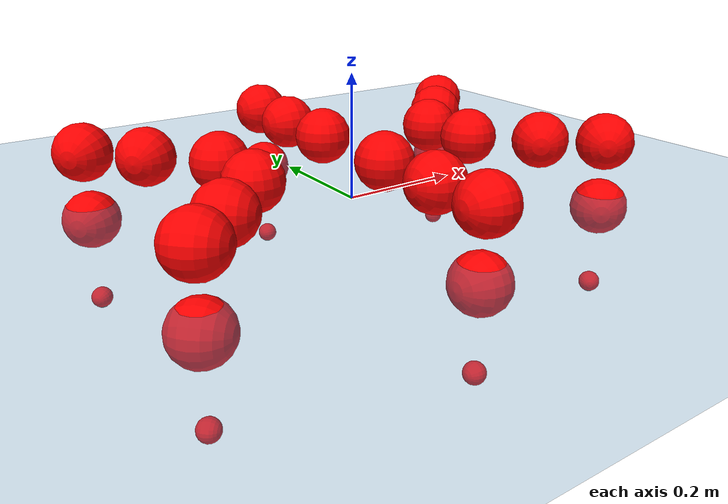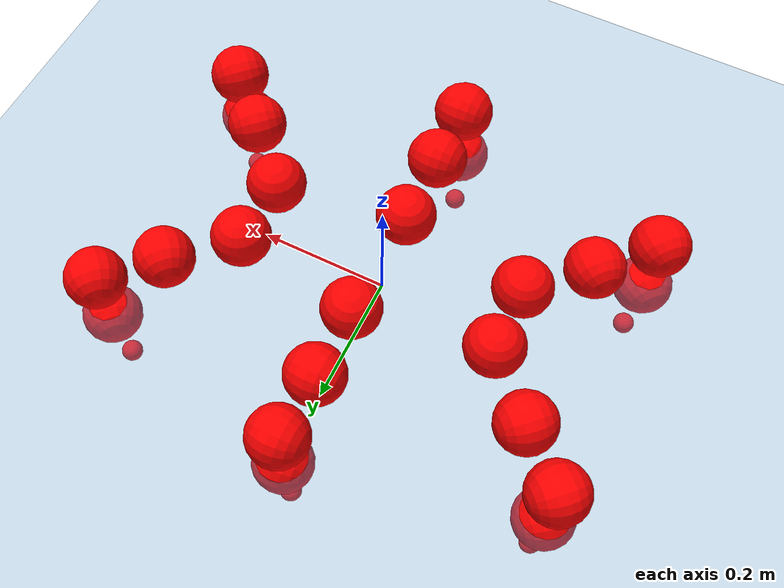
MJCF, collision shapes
<mujoco model="Golem">
  <compiler angle="radian" assetdir="assets" balanceinertia="true" inertiafromgeom="false"/>

  <option timestep="0.005" density="1.2" viscosity="2e-05"/>

  <size nkey="1"/>

  <visual>
    <quality shadowsize="8192"/>
    <map shadowclip="0.5"/>
  </visual>

  <default>
    <default class="/">
      <joint armature="0.01" damping="0.01" frictionloss="0.01"/>
      <geom contype="0" conaffinity="0" group="1" solref="-1000 -80"/>
      <site size="0.01 0.005 0.005" group="5"/>
      <general forcelimited="true" biastype="affine" gainprm="25" biasprm="0 -25 -0.5"/>
      <default class="visual">
        <geom type="mesh" group="2"/>
      </default>
      <default class="collision">
        <geom group="3"/>
      </default>
      <default class="foot">
        <geom size="0.01 0 0" condim="6" group="4" priority="1" solimp="0.015 1 0.01"/>
      </default>
      <default class="reward_collision_sphere">
        <geom group="5" rgba="1 0 0 1"/>
      </default>
    </default>
  </default>

  <asset>
    <texture type="skybox" colorspace="auto" name="//unnamed_texture_0" builtin="gradient" rgb1="0.95 0.95 0.95" rgb2="0.95 0.95 0.95" width="100" height="600"/>
    <texture type="2d" colorspace="auto" name="texplane" builtin="checker" rgb1="0.345 0.575 0.748" rgb2="0.345 0.575 0.748" markrgb="1 1 1" width="512" height="512"/>
    <material name="MatPlane" class="/" texture="texplane" texuniform="true" texrepeat="2 2" specular="0.9"/>
    <mesh name="body" class="/" file="body.stl" scale="0.001 0.001 0.001"/>
    <mesh name="coxa" class="/" file="coxa.stl" scale="0.001 0.001 0.001"/>
    <mesh name="femur" class="/" file="femur.stl" scale="0.001 0.001 0.001"/>
    <mesh name="tibia" class="/" file="tibia.stl" scale="0.001 0.001 0.001"/>
    <mesh name="tarsus" class="/" file="tarsus.stl" scale="0.001 0.001 0.001"/>
  </asset>

  <worldbody>
    <geom name="floor" class="/" size="100 100 0.125" type="plane" group="0" material="MatPlane"/>
    <light name="toplight_shadow" class="/" pos="0 0 5" dir="0.0990148 0.0990148 -0.990148" type="directional" ambient="0.04 0.04 0.04" diffuse="0.55 0.55 0.55" specular="0.12 0.12 0.12"/>
    <light name="toplight_fill" class="/" pos="0 0 5" dir="0.0990148 0.0990148 -0.990148" type="directional" castshadow="false" ambient="0.04 0.04 0.04" diffuse="0.3 0.3 0.3" specular="0.08 0.08 0.08"/>
    <body name="trunk" pos="0.00151678 0.00281848 0.00272507" quat="1 -4.82988e-05 -2.44837e-05 4.25639e-05">
      <inertial pos="0.00136024 -0.000331358 -0.00177909" quat="0.999996 0.00184696 -0.00188917 0.000832493" mass="5.57124" diaginertia="0.0327107 0.00759156 0.0246792"/>
      <joint name="//unnamed_joint_0" type="free"/>
      <geom name="//unnamed_geom_1" class="/" pos="0 0 0.0765754" quat="1 0 0 0" type="mesh" rgba="0.9 0.9 0.9 1" mesh="body"/>
      <site name="imu" class="/" pos="0.176285 0.0106821 0.125824" size="0.0114055"/>
      <camera name="track" class="/" pos="0 -1.88775 0" quat="0.707107 0.707107 0 0" mode="trackcom"/>
      <camera name="ego_camera" class="/" pos="0.166569 0 0.119649" quat="-0.5 -0.5 0.5 0.5"/>
      <body name="coxa_RR" pos="-0.228296 -0.079467 0.076784" quat="0.382651 -0.000368799 -0.000210584 -0.923893">
        <inertial pos="-0.000419815 -0.00112537 -0.00201844" quat="0.999904 -0.00883248 -0.00969105 -0.0045844" mass="0.292406" diaginertia="0.0333265 0.0072323 0.0237048"/>
        <joint name="coxa_joint_RR" class="/" pos="0 0 0" axis="0.00635282 0.00391881 -0.999972" range="-3.14326 3.14774" armature="0.0101716" damping="0" frictionloss="0.0112914"/>
        <geom name="//unnamed_geom_2" class="/" type="mesh" rgba="0.2 0.2 0.2 1" mesh="coxa"/>
        <geom name="//unnamed_geom_3" class="reward_collision_sphere" size="0.0456222" pos="-0.038439 0 0"/>
        <body name="femur_RR" pos="0.0740559 -0.00171817 -0.00499908" quat="0.499916 -0.499942 0.500082 0.50006">
          <inertial pos="-0.0025976 -0.00208489 0.000235299" quat="0.999977 -0.00023228 0.00478385 -0.00475976" mass="0.298917" diaginertia="0.0347791 0.00764262 0.0248527"/>
          <joint name="femur_joint_RR" class="/" pos="0 0 0" axis="-0.00191791 -0.00501035 -0.999986" range="-3.18321 3.08278" armature="0.0109124" damping="0.00886181" frictionloss="0.0127718"/>
          <geom name="//unnamed_geom_4" class="/" type="mesh" rgba="0.9 0.9 0.9 1" mesh="femur"/>
          <geom name="//unnamed_geom_5" class="reward_collision_sphere" size="0.0456222"/>
          <body name="tibia_RR" pos="-0.00340829 -0.103703 0.00131813" quat="0.000335555 1 -0.000235349 -0.000407205">
            <inertial pos="-0.00220907 -0.000254606 0.000671681" quat="0.999998 -0.00170757 -6.79367e-05 -0.00143213" mass="0.295573" diaginertia="0.0337249 0.00713702 0.0228154"/>
            <joint name="tibia_joint_RR" class="/" pos="0 0 0" axis="-0.00391538 -0.00964863 0.999946" range="-3.09161 3.19551" armature="0.0116248" damping="0.00154669" frictionloss="0.0114381"/>
            <geom name="//unnamed_geom_6" class="/" type="mesh" rgba="0.2 0.2 0.2 1" mesh="tibia"/>
            <geom name="//unnamed_geom_7" class="reward_collision_sphere" size="0.0456222"/>
            <body name="tarsus_RR" pos="0.114671 -0.000632761 0.00174203" quat="1 -5.17495e-05 0.000104697 8.9327e-05">
              <inertial pos="0.0796002 0.000186593 0.00256866" quat="0.496914 0.500507 0.502172 0.500392" mass="0.300265" diaginertia="0.034925 0.00771968 0.02483"/>
              <joint name="tarsus_joint_RR" class="/" pos="0 0 0" axis="0.004819 -0.00271371 0.999985" range="-3.18323 3.19567" armature="0.0108345" damping="0.0356598" frictionloss="0.00994949"/>
              <geom name="//unnamed_geom_8" class="/" type="mesh" rgba="0.9 0.9 0.9 1" mesh="tarsus"/>
              <geom name="foot_1" class="foot" size="0.0113181" pos="0.143505 0 0" quat="0 -0.707107 0 0.707107"/>
              <geom name="//unnamed_geom_10" class="reward_collision_sphere" size="0.0456222"/>
              <geom name="//unnamed_geom_11" class="reward_collision_sphere" size="0.0171083" pos="0.13774 0 0"/>
              <site name="foot_1" class="foot" pos="0.143505 0 0" quat="0 -0.707107 0 0.707107" size="0.0114055"/>
            </body>
          </body>
        </body>
      </body>
      <body name="coxa_RM" pos="0.000128606 -0.124103 0.0789797" quat="0.706378 0.000684604 -0.000754552 -0.707834">
        <inertial pos="0.00284028 9.92237e-05 -0.0022939" quat="0.999926 0.00576927 0.0089634 -0.00590973" mass="0.288197" diaginertia="0.0333867 0.00737231 0.0254007"/>
        <joint name="coxa_joint_RM" class="/" pos="0 0 0" axis="0.000832279 0.00179474 -0.999998" stiffness="0.00589195" range="-3.17874 3.1367" armature="0.0112605" damping="0.00231016" frictionloss="0.0111172"/>
        <geom name="//unnamed_geom_12" class="/" type="mesh" rgba="0.2 0.2 0.2 1" mesh="coxa"/>
        <geom name="//unnamed_geom_13" class="reward_collision_sphere" size="0.0456222" pos="-0.038439 0 0"/>
        <body name="femur_RM" pos="0.075829 0.00217129 -0.00148645" quat="0.500098 -0.499941 0.500588 0.499372">
          <inertial pos="0.000493667 -0.00241027 -0.000183191" quat="0.999961 0.00267214 -0.00657097 -0.00533344" mass="0.303853" diaginertia="0.0349719 0.00736023 0.0249965"/>
          <joint name="femur_joint_RM" class="/" pos="0 0 0" axis="-0.00593642 0.0125549 -0.999904" stiffness="0.00910945" range="-3.16074 3.13516" armature="0.00999501" damping="0.0275049" frictionloss="0.0115273"/>
          <geom name="//unnamed_geom_14" class="/" type="mesh" rgba="0.9 0.9 0.9 1" mesh="femur"/>
          <geom name="//unnamed_geom_15" class="reward_collision_sphere" size="0.0456222"/>
          <body name="tibia_RM" pos="0.000986283 -0.100107 0.00112565" quat="0.000180579 1 -0.000292148 -0.00014905">
            <inertial pos="0.00284229 -0.00136667 -0.00055877" quat="0.999947 -0.00113589 -0.00239194 -0.0099515" mass="0.281845" diaginertia="0.0337107 0.00741102 0.0240691"/>
            <joint name="tibia_joint_RM" class="/" pos="0 0 0" axis="0.00104548 0.000725443 0.999999" range="-3.18073 3.14998" armature="0.0113724" damping="0.0137387" frictionloss="0.0116817"/>
            <geom name="//unnamed_geom_16" class="/" type="mesh" rgba="0.2 0.2 0.2 1" mesh="tibia"/>
            <geom name="//unnamed_geom_17" class="reward_collision_sphere" size="0.0456222"/>
            <body name="tarsus_RM" pos="0.111762 -0.00011577 0.0031167" quat="1 0.00016157 2.89721e-05 -0.000239009">
              <inertial pos="0.0779147 -0.00247402 0.00283785" quat="0.502057 0.494229 0.501657 0.502013" mass="0.303026" diaginertia="0.0337333 0.00725463 0.023818"/>
              <joint name="tarsus_joint_RM" class="/" pos="0 0 0" axis="-0.0023328 -0.00217773 0.999995" range="-3.08262 3.11742" armature="0.0126747" damping="0.0124937" frictionloss="0.0111972"/>
              <geom name="//unnamed_geom_18" class="/" type="mesh" rgba="0.9 0.9 0.9 1" mesh="tarsus"/>
              <geom name="foot_2" class="foot" size="0.0118652" pos="0.143505 0 0" quat="0 -0.707107 0 0.707107"/>
              <geom name="//unnamed_geom_20" class="reward_collision_sphere" size="0.0456222"/>
              <geom name="//unnamed_geom_21" class="reward_collision_sphere" size="0.0171083" pos="0.13774 0 0"/>
              <site name="foot_2" class="foot" pos="0.143505 0 0" quat="0 -0.707107 0 0.707107" size="0.0114055"/>
            </body>
          </body>
        </body>
      </body>
      <body name="coxa_RF" pos="0.227173 -0.0772806 0.0781997" quat="0.923857 -0.000513641 -0.00014604 -0.382738">
        <inertial pos="-0.00113355 0.00277064 -0.000692339" quat="0.999999 0.000239872 -0.00137521 -0.000769645" mass="0.294458" diaginertia="0.0346355 0.00762177 0.0236964"/>
        <joint name="coxa_joint_RF" class="/" pos="0 0 0" axis="-0.00342251 -0.00126556 -0.999993" range="-3.1532 3.15274" armature="0.0127558" damping="0.0139948" frictionloss="0.0108188"/>
        <geom name="//unnamed_geom_22" class="/" type="mesh" rgba="0.2 0.2 0.2 1" mesh="coxa"/>
        <geom name="//unnamed_geom_23" class="reward_collision_sphere" size="0.0456222" pos="-0.038439 0 0"/>
        <body name="femur_RF" pos="0.0779419 -0.00163131 0.000284377" quat="0.500089 -0.499511 0.499639 0.500761">
          <inertial pos="0.00229001 -0.00293066 -0.000961617" quat="0.999934 0.00887661 0.00707923 -0.00171673" mass="0.286261" diaginertia="0.0344988 0.00699868 0.024296"/>
          <joint name="femur_joint_RF" class="/" pos="0 0 0" axis="0.000379418 -0.000701973 -1" stiffness="0.00263244" range="-3.16666 3.16649" armature="0.00998905" damping="0.0110114" frictionloss="0.0128972"/>
          <geom name="//unnamed_geom_24" class="/" type="mesh" rgba="0.9 0.9 0.9 1" mesh="femur"/>
          <geom name="//unnamed_geom_25" class="reward_collision_sphere" size="0.0456222"/>
          <body name="tibia_RF" pos="-0.00226028 -0.101593 0.000386877" quat="0.000141333 1 0.000141634 2.93829e-05">
            <inertial pos="-0.000871776 0.000957005 -0.000232592" quat="1 0.00020444 -0.000262183 -0.000196388" mass="0.30459" diaginertia="0.0334315 0.00778409 0.024299"/>
            <joint name="tibia_joint_RF" class="/" pos="0 0 0" axis="0.000250138 -0.00583907 0.999983" range="-3.15598 3.11311" armature="0.0104246" damping="0.00478331" frictionloss="0.0112836"/>
            <geom name="//unnamed_geom_26" class="/" type="mesh" rgba="0.2 0.2 0.2 1" mesh="tibia"/>
            <geom name="//unnamed_geom_27" class="reward_collision_sphere" size="0.0456222"/>
            <body name="tarsus_RF" pos="0.109341 0.0013953 0.00282865" quat="1 -1.51396e-06 0.000717188 -0.000444857">
              <inertial pos="0.0764161 0.000251008 -9.18981e-05" quat="0.497829 0.502959 0.499425 0.499773" mass="0.29988" diaginertia="0.034397 0.0074647 0.0253245"/>
              <joint name="tarsus_joint_RF" class="/" pos="0 0 0" axis="-0.00956809 -0.0120636 0.999881" range="-3.18166 3.12439" armature="0.0129546" damping="0.0138437" frictionloss="0.0098991"/>
              <geom name="//unnamed_geom_28" class="/" type="mesh" rgba="0.9 0.9 0.9 1" mesh="tarsus"/>
              <geom name="foot_3" class="foot" size="0.0124501" pos="0.143505 0 0" quat="0 -0.707107 0 0.707107"/>
              <geom name="//unnamed_geom_30" class="reward_collision_sphere" size="0.0456222"/>
              <geom name="//unnamed_geom_31" class="reward_collision_sphere" size="0.0171083" pos="0.13774 0 0"/>
              <site name="foot_3" class="foot" pos="0.143505 0 0" quat="0 -0.707107 0 0.707107" size="0.0114055"/>
            </body>
          </body>
        </body>
      </body>
      <body name="coxa_LR" pos="-0.229206 0.0785213 0.0789215" quat="0.382955 -0.000209841 -9.14852e-05 0.923767">
        <inertial pos="-0.00167558 0.00233653 -0.000401252" quat="0.99998 -0.0019961 -0.00540828 0.00256409" mass="0.296136" diaginertia="0.0354921 0.00780826 0.0258372"/>
        <joint name="coxa_joint_LR" class="/" pos="0 0 0" axis="-0.00095871 -0.0100753 -0.999949" stiffness="0.011167" range="-3.16018 3.08529" armature="0.00979552" damping="0" frictionloss="0.00996231"/>
        <geom name="//unnamed_geom_32" class="/" type="mesh" rgba="0.2 0.2 0.2 1" mesh="coxa"/>
        <geom name="//unnamed_geom_33" class="reward_collision_sphere" size="0.0456222" pos="-0.038439 0 0"/>
        <body name="femur_LR" pos="0.0794265 -0.00223491 0.000465263" quat="0.499844 -0.499872 0.500306 0.499977">
          <inertial pos="-0.00190066 -0.00112087 0.000837721" quat="0.999905 0.00880636 -0.00204573 0.0104332" mass="0.296171" diaginertia="0.0345844 0.00769976 0.0247604"/>
          <joint name="femur_joint_LR" class="/" pos="0 0 0" axis="0.0104686 -0.00950312 0.9999" range="-3.11441 3.1599" armature="0.0114928" damping="0" frictionloss="0.0108387"/>
          <geom name="//unnamed_geom_34" class="/" type="mesh" rgba="0.9 0.9 0.9 1" mesh="femur"/>
          <geom name="//unnamed_geom_35" class="reward_collision_sphere" size="0.0456222"/>
          <body name="tibia_LR" pos="-0.00211664 -0.102117 0.00175144" quat="0.000923012 1 0.000128527 -0.000341183">
            <inertial pos="-0.000790278 -0.000806291 0.000508577" quat="0.999998 0.0015879 -0.000827912 -0.00073823" mass="0.31239" diaginertia="0.0352509 0.00762498 0.0255987"/>
            <joint name="tibia_joint_LR" class="/" pos="0 0 0" axis="0.0089062 -0.00863007 -0.999923" range="-3.19327 3.08796" armature="0.0119501" damping="0" frictionloss="0.0108084"/>
            <geom name="//unnamed_geom_36" class="/" type="mesh" rgba="0.2 0.2 0.2 1" mesh="tibia"/>
            <geom name="//unnamed_geom_37" class="reward_collision_sphere" size="0.0456222"/>
            <body name="tarsus_LR" pos="0.111239 0.000795337 0.00280458" quat="1 0.000614348 -0.000225409 -0.000561555">
              <inertial pos="0.0784364 0.000147915 -0.00105143" quat="0.498032 0.499781 0.501623 0.500557" mass="0.291535" diaginertia="0.0354101 0.0073694 0.0253044"/>
              <joint name="tarsus_joint_LR" class="/" pos="0 0 0" axis="0.00802948 0.00102108 -0.999967" range="-3.1869 3.09207" armature="0.0108576" damping="0" frictionloss="0.0124135"/>
              <geom name="//unnamed_geom_38" class="/" type="mesh" rgba="0.9 0.9 0.9 1" mesh="tarsus"/>
              <geom name="foot_4" class="foot" size="0.0126874" pos="0.143505 0 0" quat="0.707107 0 -0.707107 0"/>
              <geom name="//unnamed_geom_40" class="reward_collision_sphere" size="0.0456222"/>
              <geom name="//unnamed_geom_41" class="reward_collision_sphere" size="0.0171083" pos="0.13774 0 0"/>
              <site name="foot_4" class="foot" pos="0.143505 0 0" quat="0.707107 0 -0.707107 0" size="0.0114055"/>
            </body>
          </body>
        </body>
      </body>
      <body name="coxa_LM" pos="0.00217469 0.125536 0.0786534" quat="0.706393 -0.00113695 9.0152e-06 0.707819">
        <inertial pos="0.00128901 -0.00185099 -0.0017011" quat="0.999899 0.00915236 0.00555314 -0.00931579" mass="0.289942" diaginertia="0.0325946 0.00724927 0.0240449"/>
        <joint name="coxa_joint_LM" class="/" pos="0 0 0" axis="0.00131363 -0.00230949 -0.999996" range="-3.09165 3.11721" armature="0.0127692" damping="0.0245781" frictionloss="0.0128612"/>
        <geom name="//unnamed_geom_42" class="/" type="mesh" rgba="0.2 0.2 0.2 1" mesh="coxa"/>
        <geom name="//unnamed_geom_43" class="reward_collision_sphere" size="0.0456222" pos="-0.038439 0 0"/>
        <body name="femur_LM" pos="0.074 0.00193221 0.000815743" quat="0.500333 -0.500188 0.498914 0.500563">
          <inertial pos="0.00257584 -0.00248332 0.000894728" quat="0.99997 0.0046451 0.00512395 0.00357999" mass="0.300306" diaginertia="0.0361316 0.00753004 0.0254303"/>
          <joint name="femur_joint_LM" class="/" pos="0 0 0" axis="-0.013813 -0.00695009 0.99988" stiffness="0.0013798" range="-3.14431 3.08889" armature="0.0128784" damping="0" frictionloss="0.0116852"/>
          <geom name="//unnamed_geom_44" class="/" type="mesh" rgba="0.9 0.9 0.9 1" mesh="femur"/>
          <geom name="//unnamed_geom_45" class="reward_collision_sphere" size="0.0456222"/>
          <body name="tibia_LM" pos="-0.00334843 -0.101191 -0.00183019" quat="-0.00040781 1 0.000198979 -5.82889e-05">
            <inertial pos="0.000279824 -0.00167834 0.00146954" quat="0.9999 -0.0103104 0.00203376 0.00950103" mass="0.289319" diaginertia="0.0351844 0.00766903 0.0249764"/>
            <joint name="tibia_joint_LM" class="/" pos="0 0 0" axis="-0.00500973 0.00165673 -0.999986" range="-3.13178 3.16528" armature="0.0124318" damping="0.00994713" frictionloss="0.00985607"/>
            <geom name="//unnamed_geom_46" class="/" type="mesh" rgba="0.2 0.2 0.2 1" mesh="tibia"/>
            <geom name="//unnamed_geom_47" class="reward_collision_sphere" size="0.0456222"/>
            <body name="tarsus_LM" pos="0.111317 -0.000127936 0.00253619" quat="1 0.000187837 -0.000189426 -5.43956e-05">
              <inertial pos="0.0739907 -9.91312e-05 -0.00265218" quat="0.500006 0.49991 0.500048 0.500036" mass="0.303609" diaginertia="0.0332374 0.00737551 0.0250578"/>
              <joint name="tarsus_joint_LM" class="/" pos="0 0 0" axis="0.00492291 0.00192153 -0.999986" range="-3.1208 3.15112" armature="0.0126311" damping="0.00940912" frictionloss="0.012625"/>
              <geom name="//unnamed_geom_48" class="/" type="mesh" rgba="0.9 0.9 0.9 1" mesh="tarsus"/>
              <geom name="foot_5" class="foot" size="0.0124107" pos="0.143505 0 0" quat="0.707107 0 -0.707107 0"/>
              <geom name="//unnamed_geom_50" class="reward_collision_sphere" size="0.0456222"/>
              <geom name="//unnamed_geom_51" class="reward_collision_sphere" size="0.0171083" pos="0.13774 0 0"/>
              <site name="foot_5" class="foot" pos="0.143505 0 0" quat="0.707107 0 -0.707107 0" size="0.0114055"/>
            </body>
          </body>
        </body>
      </body>
      <body name="coxa_LF" pos="0.229087 0.0803445 0.0753174" quat="0.923698 0.000196435 0.00029705 0.383121">
        <inertial pos="0.000627898 -0.000795643 -0.00196681" quat="0.999902 -0.00702393 0.0102683 -0.00646411" mass="0.281508" diaginertia="0.0335313 0.00739898 0.0242986"/>
        <joint name="coxa_joint_LF" class="/" pos="0 0 0" axis="-0.00321637 -0.00116991 -0.999994" stiffness="0.0197721" range="-3.1886 3.1574" armature="0.0124791" damping="0.0126735" frictionloss="0.00979358"/>
        <geom name="//unnamed_geom_52" class="/" type="mesh" rgba="0.2 0.2 0.2 1" mesh="coxa"/>
        <geom name="//unnamed_geom_53" class="reward_collision_sphere" size="0.0456222" pos="-0.038439 0 0"/>
        <body name="femur_LF" pos="0.0765126 -0.00155045 0.000404481" quat="0.50016 -0.500453 0.499377 0.500008">
          <inertial pos="0.00108861 -0.000182969 -0.0009299" quat="0.99999 -0.00384368 0.00247896 -0.000283289" mass="0.293027" diaginertia="0.0339346 0.00737267 0.0233145"/>
          <joint name="femur_joint_LF" class="/" pos="0 0 0" axis="0.00110536 0.00292592 0.999995" range="-3.08292 3.13974" armature="0.0126451" damping="0.0166132" frictionloss="0.0109813"/>
          <geom name="//unnamed_geom_54" class="/" type="mesh" rgba="0.9 0.9 0.9 1" mesh="femur"/>
          <geom name="//unnamed_geom_55" class="reward_collision_sphere" size="0.0456222"/>
          <body name="tibia_LF" pos="-0.00114993 -0.100935 0.00296505" quat="6.71717e-05 1 0.000254579 -0.000402133">
            <inertial pos="-5.76451e-05 0.00278179 0.0023482" quat="0.999985 -0.00432871 -0.000907695 0.00330915" mass="0.288586" diaginertia="0.0341548 0.00742206 0.024635"/>
            <joint name="tibia_joint_LF" class="/" pos="0 0 0" axis="0.0021881 -0.00205355 -0.999995" range="-3.13679 3.11874" armature="0.00964918" damping="0" frictionloss="0.0129122"/>
            <geom name="//unnamed_geom_56" class="/" type="mesh" rgba="0.2 0.2 0.2 1" mesh="tibia"/>
            <geom name="//unnamed_geom_57" class="reward_collision_sphere" size="0.0456222"/>
            <body name="tarsus_LF" pos="0.115383 0.00187712 0.00115821" quat="1 -0.000262053 0.000676372 -0.0003351">
              <inertial pos="0.0782101 -0.00105651 -0.00254205" quat="0.491783 0.501695 0.496128 0.510205" mass="0.31103" diaginertia="0.0345467 0.00783458 0.0256684"/>
              <joint name="tarsus_joint_LF" class="/" pos="0 0 0" axis="0.00442692 0.0122655 -0.999915" stiffness="0.0355055" range="-3.19167 3.18874" armature="0.0113418" damping="0.0197023" frictionloss="0.0120015"/>
              <geom name="//unnamed_geom_58" class="/" type="mesh" rgba="0.9 0.9 0.9 1" mesh="tarsus"/>
              <geom name="foot_6" class="foot" size="0.010957" pos="0.143505 0 0" quat="0.707107 0 -0.707107 0"/>
              <geom name="//unnamed_geom_60" class="reward_collision_sphere" size="0.0456222"/>
              <geom name="//unnamed_geom_61" class="reward_collision_sphere" size="0.0171083" pos="0.13774 0 0"/>
              <site name="foot_6" class="foot" pos="0.143505 0 0" quat="0.707107 0 -0.707107 0" size="0.0114055"/>
            </body>
          </body>
        </body>
      </body>
    </body>
  </worldbody>

  <contact>
    <pair class="/" geom1="floor" geom2="foot_1" name="//unnamed_contact_0"/>
    <pair class="/" geom1="floor" geom2="foot_2" name="//unnamed_contact_1"/>
    <pair class="/" geom1="floor" geom2="foot_3" name="//unnamed_contact_2"/>
    <pair class="/" geom1="floor" geom2="foot_4" name="//unnamed_contact_3"/>
    <pair class="/" geom1="floor" geom2="foot_5" name="//unnamed_contact_4"/>
    <pair class="/" geom1="floor" geom2="foot_6" name="//unnamed_contact_5"/>
  </contact>

  <actuator>
    <general name="coxa_joint_RR" class="/" joint="coxa_joint_RR" forcerange="-8.02167 8.02167" gainprm="26.9492" biasprm="0 -26.9492 -0.601635"/>
    <general name="femur_joint_RR" class="/" joint="femur_joint_RR" forcerange="-8.4158 8.4158" gainprm="26.9492" biasprm="0 -26.9492 -0.601635"/>
    <general name="tibia_joint_RR" class="/" joint="tibia_joint_RR" forcerange="-8.48714 8.48714" gainprm="26.9492" biasprm="0 -26.9492 -0.601635"/>
    <general name="tarsus_joint_RR" class="/" joint="tarsus_joint_RR" forcerange="-9.16018 9.16018" gainprm="26.9492" biasprm="0 -26.9492 -0.601635"/>
    <general name="coxa_joint_RM" class="/" joint="coxa_joint_RM" forcerange="-7.92982 7.92982" gainprm="26.9492" biasprm="0 -26.9492 -0.601635"/>
    <general name="femur_joint_RM" class="/" joint="femur_joint_RM" forcerange="-8.29413 8.29413" gainprm="26.9492" biasprm="0 -26.9492 -0.601635"/>
    <general name="tibia_joint_RM" class="/" joint="tibia_joint_RM" forcerange="-7.44111 7.44111" gainprm="26.9492" biasprm="0 -26.9492 -0.601635"/>
    <general name="tarsus_joint_RM" class="/" joint="tarsus_joint_RM" forcerange="-8.00836 8.00836" gainprm="26.9492" biasprm="0 -26.9492 -0.601635"/>
    <general name="coxa_joint_RF" class="/" joint="coxa_joint_RF" forcerange="-7.79562 7.79562" gainprm="26.9492" biasprm="0 -26.9492 -0.601635"/>
    <general name="femur_joint_RF" class="/" joint="femur_joint_RF" forcerange="-7.46686 7.46686" gainprm="26.9492" biasprm="0 -26.9492 -0.601635"/>
    <general name="tibia_joint_RF" class="/" joint="tibia_joint_RF" forcerange="-8.0267 8.0267" gainprm="26.9492" biasprm="0 -26.9492 -0.601635"/>
    <general name="tarsus_joint_RF" class="/" joint="tarsus_joint_RF" forcerange="-9.1622 9.1622" gainprm="26.9492" biasprm="0 -26.9492 -0.601635"/>
    <general name="coxa_joint_LR" class="/" joint="coxa_joint_LR" forcerange="-8.37872 8.37872" gainprm="26.9492" biasprm="0 -26.9492 -0.601635"/>
    <general name="femur_joint_LR" class="/" joint="femur_joint_LR" forcerange="-8.07555 8.07555" gainprm="26.9492" biasprm="0 -26.9492 -0.601635"/>
    <general name="tibia_joint_LR" class="/" joint="tibia_joint_LR" forcerange="-8.58172 8.58172" gainprm="26.9492" biasprm="0 -26.9492 -0.601635"/>
    <general name="tarsus_joint_LR" class="/" joint="tarsus_joint_LR" forcerange="-8.88742 8.88742" gainprm="26.9492" biasprm="0 -26.9492 -0.601635"/>
    <general name="coxa_joint_LM" class="/" joint="coxa_joint_LM" forcerange="-9.08497 9.08497" gainprm="26.9492" biasprm="0 -26.9492 -0.601635"/>
    <general name="femur_joint_LM" class="/" joint="femur_joint_LM" forcerange="-8.38751 8.38751" gainprm="26.9492" biasprm="0 -26.9492 -0.601635"/>
    <general name="tibia_joint_LM" class="/" joint="tibia_joint_LM" forcerange="-8.64952 8.64952" gainprm="26.9492" biasprm="0 -26.9492 -0.601635"/>
    <general name="tarsus_joint_LM" class="/" joint="tarsus_joint_LM" forcerange="-8.05692 8.05692" gainprm="26.9492" biasprm="0 -26.9492 -0.601635"/>
    <general name="coxa_joint_LF" class="/" joint="coxa_joint_LF" forcerange="-8.08539 8.08539" gainprm="26.9492" biasprm="0 -26.9492 -0.601635"/>
    <general name="femur_joint_LF" class="/" joint="femur_joint_LF" forcerange="-8.2785 8.2785" gainprm="26.9492" biasprm="0 -26.9492 -0.601635"/>
    <general name="tibia_joint_LF" class="/" joint="tibia_joint_LF" forcerange="-8.44613 8.44613" gainprm="26.9492" biasprm="0 -26.9492 -0.601635"/>
    <general name="tarsus_joint_LF" class="/" joint="tarsus_joint_LF" forcerange="-7.46103 7.46103" gainprm="26.9492" biasprm="0 -26.9492 -0.601635"/>
  </actuator>

  <sensor>
    <gyro site="imu" name="imu_angular_velocity"/>
    <velocimeter site="imu" name="imu_linear_velocity"/>
    <framelinvel objtype="site" objname="foot_1" name="foot_1_global_linear_velocity"/>
    <framelinvel objtype="site" objname="foot_2" name="foot_2_global_linear_velocity"/>
    <framelinvel objtype="site" objname="foot_3" name="foot_3_global_linear_velocity"/>
    <framelinvel objtype="site" objname="foot_4" name="foot_4_global_linear_velocity"/>
    <framelinvel objtype="site" objname="foot_5" name="foot_5_global_linear_velocity"/>
    <framelinvel objtype="site" objname="foot_6" name="foot_6_global_linear_velocity"/>
  </sensor>

  <keyframe>
    <key name="home" qpos="0 0 0.1457 1 0 0 0 0 0 0 0 0 0 0 0 0 0 0 0 0 0 0 0 0 0 0 0 0 0 0 0"/>
  </keyframe>
</mujoco>
